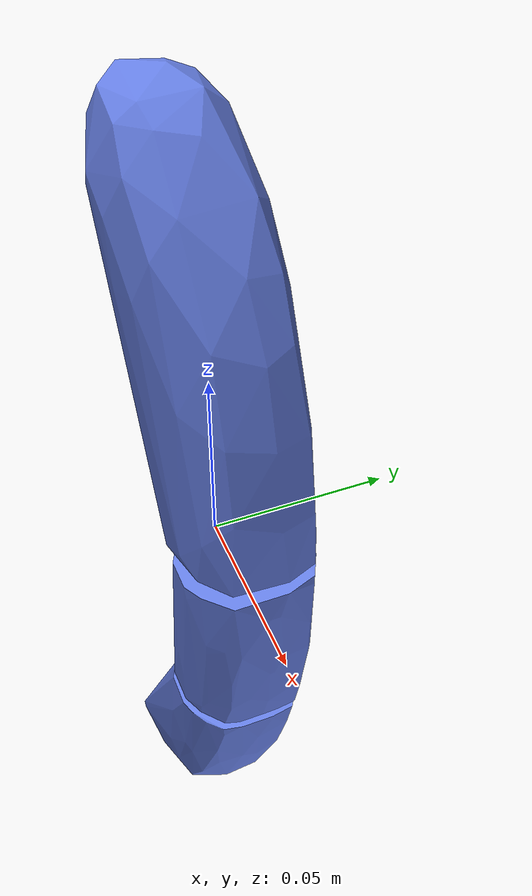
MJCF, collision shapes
<mujoco model="banana_55180008">
  <compiler angle="radian"/>
  <asset>
    <texture type="2d" name="banana_55180008_tex" file="banana_55180008_visual_0.png"/>
    <material name="banana_55180008_mat" texture="banana_55180008_tex"/>
    <mesh name="banana_55180008_visual" content_type="model/obj" file="banana_55180008_visual.obj" scale="-1 1.33236 1.78303"/>
    <mesh name="banana_55180008_c0" content_type="model/obj" file="banana_55180008_c0.obj" scale="-1 1.33236 1.78303"/>
    <mesh name="banana_55180008_c1" content_type="model/obj" file="banana_55180008_c1.obj" scale="-1 1.33236 1.78303"/>
    <mesh name="banana_55180008_c2" content_type="model/obj" file="banana_55180008_c2.obj" scale="-1 1.33236 1.78303"/>
  </asset>
  <worldbody>
    <body name="banana_55180008">
      <freejoint/>
      <geom name="banana_55180008_visual" type="mesh" mesh="banana_55180008_visual" mass="1e-8" contype="0" conaffinity="0" group="2" material="banana_55180008_mat"/>
      <geom name="banana_55180008_c0" type="mesh" mesh="banana_55180008_c0" group="3" density="531.953" friction="0.9 0.05 0.005" condim="4" rgba="0.4 0.5 0.9 0.35"/>
      <geom name="banana_55180008_c1" type="mesh" mesh="banana_55180008_c1" group="3" density="531.953" friction="0.9 0.05 0.005" condim="4" rgba="0.4 0.5 0.9 0.35"/>
      <geom name="banana_55180008_c2" type="mesh" mesh="banana_55180008_c2" group="3" density="531.953" friction="0.9 0.05 0.005" condim="4" rgba="0.4 0.5 0.9 0.35"/>
    </body>
  </worldbody>
</mujoco>
